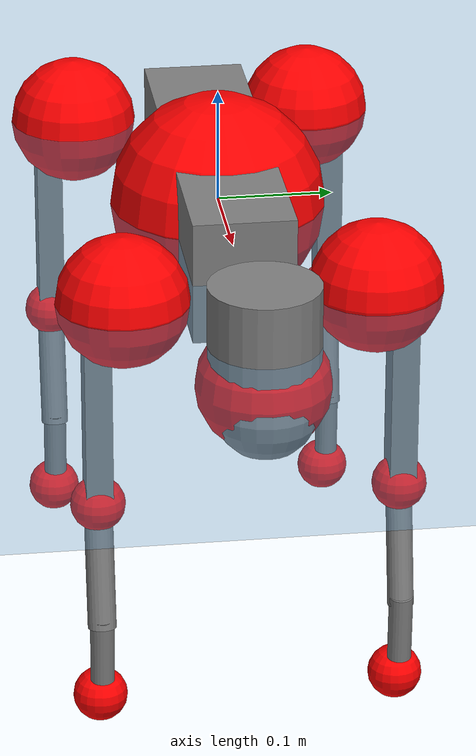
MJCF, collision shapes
<mujoco model="go2">
  <compiler angle="radian" assetdir="assets" balanceinertia="true" inertiafromgeom="false"/>

  <option timestep="0.005" density="1.2" viscosity="2e-05"/>

  <size nkey="1"/>

  <visual>
    <quality shadowsize="8192"/>
    <map shadowclip="0.5"/>
  </visual>

  <default>
    <default class="/">
      <geom contype="0" conaffinity="0" group="1" solref="-1000 -80"/>
      <site size="0.01 0.005 0.005" group="5"/>
      <general forcelimited="true" biastype="affine" gainprm="20" biasprm="0 -20 -0.5"/>
      <default class="go2">
        <joint armature="0.01" damping="0.01" frictionloss="0.2"/>
        <geom condim="1" margin="0.001"/>
        <default class="visual">
          <geom type="mesh" group="2"/>
        </default>
        <default class="collision">
          <geom group="3"/>
          <default class="foot">
            <geom size="0.022 0 0" condim="6" priority="1" friction="0.8 0.02 0.01" solimp="0.015 1 0.022"/>
          </default>
        </default>
        <default class="reward_collision_sphere">
          <geom group="5" rgba="1 0 0 1"/>
        </default>
      </default>
    </default>
  </default>

  <asset>
    <texture type="skybox" colorspace="auto" name="//unnamed_texture_0" builtin="gradient" rgb1="0.95 0.95 0.95" rgb2="0.95 0.95 0.95" width="100" height="600"/>
    <texture type="2d" colorspace="auto" name="texplane" builtin="checker" rgb1="0.345 0.575 0.748" rgb2="0.345 0.575 0.748" markrgb="1 1 1" width="512" height="512"/>
    <material name="MatPlane" class="/" texture="texplane" texuniform="true" texrepeat="2 2" specular="0.9"/>
    <material name="metal" class="/" rgba="0.9 0.95 0.95 1"/>
    <material name="black" class="/" rgba="0 0 0 1"/>
    <material name="white" class="/"/>
    <material name="gray" class="/" rgba="0.671705 0.692426 0.77427 1"/>
    <mesh name="base_0" class="/" file="base_0.obj"/>
    <mesh name="base_1" class="/" file="base_1.obj"/>
    <mesh name="base_2" class="/" file="base_2.obj"/>
    <mesh name="base_3" class="/" file="base_3.obj"/>
    <mesh name="base_4" class="/" file="base_4.obj"/>
    <mesh name="hip_0" class="/" file="hip_0.obj"/>
    <mesh name="hip_1" class="/" file="hip_1.obj"/>
    <mesh name="thigh_0" class="/" file="thigh_0.obj"/>
    <mesh name="thigh_1" class="/" file="thigh_1.obj"/>
    <mesh name="thigh_mirror_0" class="/" file="thigh_mirror_0.obj"/>
    <mesh name="thigh_mirror_1" class="/" file="thigh_mirror_1.obj"/>
    <mesh name="calf_0" class="/" file="calf_0.obj"/>
    <mesh name="calf_1" class="/" file="calf_1.obj"/>
    <mesh name="calf_mirror_0" class="/" file="calf_mirror_0.obj"/>
    <mesh name="calf_mirror_1" class="/" file="calf_mirror_1.obj"/>
    <mesh name="foot" class="/" file="foot.obj"/>
  </asset>

  <worldbody>
    <geom name="floor" class="/" size="100 100 0.125" type="plane" group="0" material="MatPlane"/>
    <light name="toplight_shadow" class="/" pos="0 0 5" dir="0.0990148 0.0990148 -0.990148" type="directional" ambient="0.04 0.04 0.04" diffuse="0.55 0.55 0.55" specular="0.12 0.12 0.12"/>
    <light name="toplight_fill" class="/" pos="0 0 5" dir="0.0990148 0.0990148 -0.990148" type="directional" castshadow="false" ambient="0.04 0.04 0.04" diffuse="0.3 0.3 0.3" specular="0.08 0.08 0.08"/>
    <body name="trunk" childclass="go2" pos="-0.000151978 -0.00010665 0.000305366" quat="1 0.0001317 -0.000209446 -3.0899e-06">
      <inertial pos="0.0215739 0.000123917 -0.0047341" quat="0.00271576 0.714497 -0.00264089 0.699628" mass="5.68264" diaginertia="0.124431 0.0611924 0.0126493"/>
      <joint name="//unnamed_joint_0" type="free" armature="0" damping="0" frictionloss="0"/>
      <geom name="//unnamed_geom_1" class="visual" material="black" mesh="base_0"/>
      <geom name="//unnamed_geom_2" class="visual" material="black" mesh="base_1"/>
      <geom name="//unnamed_geom_3" class="visual" material="black" mesh="base_2"/>
      <geom name="//unnamed_geom_4" class="visual" material="white" mesh="base_3"/>
      <geom name="//unnamed_geom_5" class="visual" material="gray" mesh="base_4"/>
      <geom name="trunk_1" class="collision" size="0.176871 0.0439593 0.0535974" type="box"/>
      <geom name="trunk_2" class="collision" size="0.0470153 0.0423137" pos="0.294238 0 0.00876009" type="cylinder"/>
      <geom name="trunk_3" class="collision" size="0.0441944" pos="0.302497 0 -0.0525605"/>
      <geom name="//unnamed_geom_9" class="reward_collision_sphere" size="0.0940305"/>
      <geom name="//unnamed_geom_10" class="reward_collision_sphere" size="0.0564183" pos="0.289076 0 -0.0394204"/>
      <site name="imu" pos="-0.024175 -0.000202669 0.0350415" size="0.00940305"/>
      <camera name="track" pos="0 -1.82499 0" quat="0.707107 0.707107 0 0" mode="trackcom"/>
      <camera name="ego_camera" pos="0.322113 0 0.0394204" quat="-0.5 -0.5 0.5 0.5"/>
      <body name="FL_hip" pos="0.199 0.0431616 0.00112255" quat="1 0.000103561 -2.91333e-05 1.53363e-05">
        <inertial pos="-0.00550291 0.00209484 -0.000385835" quat="0.496608 0.499458 0.505925 0.497957" mass="0.56036" diaginertia="0.00103104 0.000381002 0.000247868"/>
        <joint name="FL_hip_joint" pos="0 0 0" axis="0.999949 0.00772684 -0.00655338" range="-1.04188 1.0494" armature="0.00924003" damping="0.00615759" frictionloss="0.182584"/>
        <geom name="//unnamed_geom_11" class="visual" material="metal" mesh="hip_0"/>
        <geom name="//unnamed_geom_12" class="visual" material="gray" mesh="hip_1"/>
        <geom name="//unnamed_geom_13" class="collision" size="0.0432541 0.0188061" pos="0 0.0729995 0" quat="0.707107 0.707107 0 0" type="cylinder"/>
        <geom name="//unnamed_geom_14" class="reward_collision_sphere" size="0.0564183" pos="0 0.0638746 0"/>
        <body name="FL_thigh" pos="0.000428594 0.0873504 0.000981584" quat="1 -0.000271651 -5.07525e-05 0.000126832">
          <inertial pos="-0.00386921 -0.0201271 -0.029058" quat="0.828741 0.0852583 -0.0221665 0.552656" mass="0.95391" diaginertia="0.00697593 0.00368595 0.000451718"/>
          <joint name="FL_thigh_joint" pos="0 0 0" axis="-0.00168978 0.999997 0.00199814" stiffness="0.00286999" range="-1.57431 3.49057" armature="0.00914626" damping="0.0111311" frictionloss="0.195855"/>
          <geom name="//unnamed_geom_15" class="visual" material="metal" mesh="thigh_0"/>
          <geom name="//unnamed_geom_16" class="visual" material="gray" mesh="thigh_1"/>
          <geom name="//unnamed_geom_17" class="collision" size="0.100143 0.0115187 0.0159852" pos="0 0 -0.0932949" quat="0.707107 0 0.707107 0" type="box"/>
          <body name="FL_calf" pos="-0.000454315 -0.000833055 -0.186546" quat="1 3.03647e-05 0.000459259 8.41553e-05">
            <inertial pos="0.00598232 -0.000920132 -0.123064" quat="0.710772 0.00222447 -0.00498606 0.703401" mass="0.196285" diaginertia="0.00174482 0.00091405 2.72621e-05"/>
            <joint name="FL_calf_joint" pos="0 0 0" axis="-0.000821783 0.999996 0.0025748" stiffness="0.00126134" range="-2.72542 -0.839931" armature="0.00935525" damping="0.00755304" frictionloss="0.185732"/>
            <geom name="//unnamed_geom_18" class="visual" material="gray" mesh="calf_0"/>
            <geom name="//unnamed_geom_19" class="visual" material="black" mesh="calf_1"/>
            <geom name="FL_calf0" class="collision" size="0.0112837 0.0564183" pos="0.00825931 0 -0.0525605" quat="0.994493 0 -0.104807 0" type="cylinder"/>
            <geom name="//unnamed_geom_21" class="collision" size="0.0103434 0.0305599" pos="0.0206483 0 -0.129649" quat="0.999688 0 0.0249974 0" type="cylinder"/>
            <geom name="//unnamed_geom_22" class="visual" pos="0 0 -0.18659" quat="1 0 0 0" material="black" mesh="foot"/>
            <geom name="FL_foot" class="foot" size="0.0165566" pos="-0.00206483 0 -0.18659"/>
            <geom name="//unnamed_geom_24" class="reward_collision_sphere" size="0.0235076"/>
            <geom name="//unnamed_geom_25" class="reward_collision_sphere" size="0.0235076" pos="-0.00206483 0 -0.18659"/>
            <site name="FL_foot" class="foot" pos="-0.00206483 0 -0.18659" size="0.00940305"/>
          </body>
        </body>
      </body>
      <body name="FR_hip" pos="0.200012 -0.0410179 6.55459e-05" quat="1 2.64987e-05 -2.9263e-05 -5.79141e-05">
        <inertial pos="-0.00475937 -0.00123183 -0.00120239" quat="0.495271 0.508414 0.500239 0.495966" mass="0.566502" diaginertia="0.00104409 0.000382731 0.000248372"/>
        <joint name="FR_hip_joint" pos="0 0 0" axis="0.999993 0.00372844 -0.000341312" stiffness="0.00512732" range="-1.05234 1.0437" armature="0.0093844" damping="0.014006" frictionloss="0.192571"/>
        <geom name="//unnamed_geom_26" class="visual" pos="0 3.17848e-10 1.36332e-08" quat="4.63268e-05 1 0 0" material="metal" mesh="hip_0"/>
        <geom name="//unnamed_geom_27" class="visual" pos="0 5.15269e-10 -3.372e-08" quat="4.63268e-05 1 0 0" material="gray" mesh="hip_1"/>
        <geom name="//unnamed_geom_28" class="collision" size="0.0432541 0.0188061" pos="0 -0.0729995 0" quat="0.707107 0.707107 0 0" type="cylinder"/>
        <geom name="//unnamed_geom_29" class="reward_collision_sphere" size="0.0564183" pos="0 -0.0638746 0"/>
        <body name="FR_thigh" pos="0.00047198 -0.0864272 -0.000171616" quat="1 4.81932e-05 -7.78215e-07 -5.89483e-05">
          <inertial pos="-0.00321196 0.0214043 -0.0281567" quat="0.551854 -0.0200548 0.084326 0.829424" mass="0.960807" diaginertia="0.00695374 0.0037155 0.00045462"/>
          <joint name="FR_thigh_joint" pos="0 0 0" axis="-0.00486387 -0.999978 -0.00442256" range="-3.4904 1.5581" armature="0.00918762" damping="0.0139969" frictionloss="0.192076"/>
          <geom name="//unnamed_geom_30" class="visual" material="metal" mesh="thigh_mirror_0"/>
          <geom name="//unnamed_geom_31" class="visual" material="gray" mesh="thigh_mirror_1"/>
          <geom name="//unnamed_geom_32" class="collision" size="0.100143 0.0115187 0.0159852" pos="0 0 -0.0932949" quat="0.707107 0 0.707107 0" type="box"/>
          <body name="FR_calf" pos="-0.000372602 -0.000369301 -0.186694" quat="1 -0.00022769 -9.97777e-05 0.000101165">
            <inertial pos="0.00750043 0.00154906 -0.124719" quat="0.703169 -0.00611992 0.00172954 0.710994" mass="0.201388" diaginertia="0.00172973 0.000920005 2.7547e-05"/>
            <joint name="FR_calf_joint" pos="0 0 0" axis="-0.000919168 -1 0.000155373" range="0.829643 2.72639" armature="0.00942604" damping="0.00873735" frictionloss="0.185834"/>
            <geom name="//unnamed_geom_33" class="visual" material="gray" mesh="calf_mirror_0"/>
            <geom name="//unnamed_geom_34" class="visual" material="black" mesh="calf_mirror_1"/>
            <geom name="FR_calf0" class="collision" size="0.012224 0.0564183" pos="0.0103241 0 -0.0525605" quat="0.995004 0 -0.0998334 0" type="cylinder"/>
            <geom name="//unnamed_geom_36" class="collision" size="0.0103434 0.0305599" pos="0.0206483 0 -0.129649" quat="0.999688 0 0.0249974 0" type="cylinder"/>
            <geom name="//unnamed_geom_37" class="visual" pos="0 0 -0.18659" quat="1 0 0 0" material="black" mesh="foot"/>
            <geom name="FR_foot" class="foot" size="0.0220871" pos="-0.00206483 0 -0.18659"/>
            <geom name="//unnamed_geom_39" class="reward_collision_sphere" size="0.0235076"/>
            <geom name="//unnamed_geom_40" class="reward_collision_sphere" size="0.0235076" pos="-0.00206483 0 -0.18659"/>
            <site name="FR_foot" class="foot" pos="-0.00206483 0 -0.18659" size="0.00940305"/>
          </body>
        </body>
      </body>
      <body name="RL_hip" pos="-0.198712 0.0428854 0.000524206" quat="1 -0.000197421 0.000357171 -0.000261475">
        <inertial pos="0.00577339 0.00142118 -5.89842e-05" quat="0.50595 0.499149 0.496047 0.4988" mass="0.568745" diaginertia="0.00103279 0.000378235 0.000249202"/>
        <joint name="RL_hip_joint" pos="0 0 0" axis="-0.999764 -0.0131152 0.0173408" stiffness="0.000567496" range="-1.06494 1.04835" armature="0.00941838" damping="0.0148682" frictionloss="0.186695"/>
        <geom name="//unnamed_geom_41" class="visual" pos="-1.36253e-09 0 -2.67088e-07" quat="4.63268e-05 0 1 0" material="metal" mesh="hip_0"/>
        <geom name="//unnamed_geom_42" class="visual" pos="-2.20883e-09 0 -2.36869e-07" quat="4.63268e-05 0 1 0" material="gray" mesh="hip_1"/>
        <geom name="//unnamed_geom_43" class="collision" size="0.0432541 0.0188061" pos="0 0.0729995 0" quat="0.707107 0.707107 0 0" type="cylinder"/>
        <geom name="//unnamed_geom_44" class="reward_collision_sphere" size="0.0564183" pos="0 0.0638746 0"/>
        <body name="RL_thigh" pos="-0.00110238 0.0859154 0.00118249" quat="1 1.32726e-05 -8.03895e-06 -1.85368e-05">
          <inertial pos="-0.0032671 -0.0196809 -0.0289718" quat="0.828865 0.087805 -0.0216829 0.552089" mass="0.953297" diaginertia="0.00698255 0.00364486 0.00044451"/>
          <joint name="RL_thigh_joint" pos="0 0 0" axis="0.000514128 1 -0.000782764" range="-0.540026 4.52113" armature="0.00942619" damping="0.0091019" frictionloss="0.184126"/>
          <geom name="//unnamed_geom_45" class="visual" material="metal" mesh="thigh_0"/>
          <geom name="//unnamed_geom_46" class="visual" material="gray" mesh="thigh_1"/>
          <geom name="//unnamed_geom_47" class="collision" size="0.100143 0.0115187 0.0159852" pos="0 0 -0.0932949" quat="0.707107 0 0.707107 0" type="box"/>
          <body name="RL_calf" pos="0.00100526 -0.00149793 -0.187175" quat="1 0.000207116 -0.000151558 -2.93219e-05">
            <inertial pos="0.00617948 -0.000409374 -0.122744" quat="0.712661 -0.000808117 -0.00345023 0.701499" mass="0.200466" diaginertia="0.00174274 0.000930021 2.74335e-05"/>
            <joint name="RL_calf_joint" pos="0 0 0" axis="0.00375534 0.999985 0.00410508" stiffness="0.00414982" range="-2.7111 -0.819524" armature="0.00964335" damping="0" frictionloss="0.194639"/>
            <geom name="//unnamed_geom_48" class="visual" material="gray" mesh="calf_0"/>
            <geom name="//unnamed_geom_49" class="visual" material="black" mesh="calf_1"/>
            <geom name="RL_calf0" class="collision" size="0.012224 0.0564183" pos="0.0103241 0 -0.0525605" quat="0.995004 0 -0.0998334 0" type="cylinder"/>
            <geom name="//unnamed_geom_51" class="collision" size="0.0103434 0.0305599" pos="0.0206483 0 -0.129649" quat="0.999688 0 0.0249974 0" type="cylinder"/>
            <geom name="//unnamed_geom_52" class="visual" pos="0 0 -0.18659" quat="1 0 0 0" material="black" mesh="foot"/>
            <geom name="RL_foot" class="foot" size="0.018185" pos="-0.00206483 0 -0.18659"/>
            <geom name="//unnamed_geom_54" class="reward_collision_sphere" size="0.0235076"/>
            <geom name="//unnamed_geom_55" class="reward_collision_sphere" size="0.0235076" pos="-0.00206483 0 -0.18659"/>
            <site name="RL_foot" class="foot" pos="-0.00206483 0 -0.18659" size="0.00940305"/>
          </body>
        </body>
      </body>
      <body name="RR_hip" pos="-0.200332 -0.0431443 -0.00178621" quat="1 5.64412e-06 4.71063e-07 -2.43449e-05">
        <inertial pos="0.00457161 -0.0024214 0.000267706" quat="0.500592 0.496934 0.497976 0.504465" mass="0.561428" diaginertia="0.00102159 0.000371188 0.00024377"/>
        <joint name="RR_hip_joint" pos="0 0 0" axis="-0.999994 -0.00206385 -0.00278176" range="-1.04592 1.05367" armature="0.00931188" damping="0.00488653" frictionloss="0.189958"/>
        <geom name="//unnamed_geom_56" class="visual" pos="1.35838e-09 3.17848e-10 -2.80721e-07" quat="2.14617e-09 4.63268e-05 4.63268e-05 -1" material="metal" mesh="hip_0"/>
        <geom name="//unnamed_geom_57" class="visual" pos="2.2191e-09 5.15269e-10 -2.03149e-07" quat="2.14617e-09 4.63268e-05 4.63268e-05 -1" material="gray" mesh="hip_1"/>
        <geom name="//unnamed_geom_58" class="collision" size="0.0432541 0.0188061" pos="0 -0.0729995 0" quat="0.707107 0.707107 0 0" type="cylinder"/>
        <geom name="//unnamed_geom_59" class="reward_collision_sphere" size="0.0564183" pos="0 -0.0638746 0"/>
        <body name="RR_thigh" pos="0.000332086 -0.0879002 -0.00127168" quat="1 -4.72952e-07 1.45171e-06 2.38233e-06">
          <inertial pos="-0.00320469 0.0207029 -0.0283737" quat="0.552565 -0.0176235 0.081923 0.829247" mass="0.953581" diaginertia="0.00699822 0.00367914 0.000458835"/>
          <joint name="RR_thigh_joint" pos="0 0 0" axis="-0.00302042 -0.999995 0.000452293" stiffness="0.00223232" range="-4.54105 0.526264" armature="0.0092119" damping="0.0163699" frictionloss="0.193945"/>
          <geom name="//unnamed_geom_60" class="visual" material="metal" mesh="thigh_mirror_0"/>
          <geom name="//unnamed_geom_61" class="visual" material="gray" mesh="thigh_mirror_1"/>
          <geom name="//unnamed_geom_62" class="collision" size="0.100143 0.0115187 0.0159852" pos="0 0 -0.0932949" quat="0.707107 0 0.707107 0" type="box"/>
          <body name="RR_calf" pos="0.00103002 -0.000501819 -0.187263" quat="1 7.96885e-05 -5.57754e-05 -3.99607e-06">
            <inertial pos="0.00651191 5.74038e-05 -0.123771" quat="0.70337 -0.00569854 0.00203213 0.710798" mass="0.200198" diaginertia="0.00177284 0.000924928 2.75202e-05"/>
            <joint name="RR_calf_joint" pos="0 0 0" axis="0.00125262 -0.999996 0.00244778" range="0.83426 2.73172" armature="0.00938311" damping="0.00930078" frictionloss="0.191042"/>
            <geom name="//unnamed_geom_63" class="visual" material="gray" mesh="calf_mirror_0"/>
            <geom name="//unnamed_geom_64" class="visual" material="black" mesh="calf_mirror_1"/>
            <geom name="RR_calf0" class="collision" size="0.012224 0.0564183" pos="0.0103241 0 -0.0525605" quat="0.995004 0 -0.0998334 0" type="cylinder"/>
            <geom name="//unnamed_geom_66" class="collision" size="0.0103434 0.0305599" pos="0.0206483 0 -0.129649" quat="0.999688 0 0.0249974 0" type="cylinder"/>
            <geom name="//unnamed_geom_67" class="visual" pos="0 0 -0.18659" quat="1 0 0 0" material="black" mesh="foot"/>
            <geom name="RR_foot" class="foot" size="0.0218131" pos="-0.00206483 0 -0.18659"/>
            <geom name="//unnamed_geom_69" class="reward_collision_sphere" size="0.0235076"/>
            <geom name="//unnamed_geom_70" class="reward_collision_sphere" size="0.0235076" pos="-0.00206483 0 -0.18659"/>
            <site name="RR_foot" class="foot" pos="-0.00206483 0 -0.18659" size="0.00940305"/>
          </body>
        </body>
      </body>
    </body>
  </worldbody>

  <contact>
    <pair class="/" geom1="floor" geom2="FL_foot" name="//unnamed_contact_0"/>
    <pair class="/" geom1="floor" geom2="FR_foot" name="//unnamed_contact_1"/>
    <pair class="/" geom1="floor" geom2="RL_foot" name="//unnamed_contact_2"/>
    <pair class="/" geom1="floor" geom2="RR_foot" name="//unnamed_contact_3"/>
  </contact>

  <actuator>
    <general name="FL_hip" class="/" joint="FL_hip_joint" forcerange="-22.3073 22.3073" gainprm="18.8801" biasprm="0 -18.8801 -0.476755"/>
    <general name="FL_thigh" class="/" joint="FL_thigh_joint" forcerange="-22.6743 22.6743" gainprm="18.8801" biasprm="0 -18.8801 -0.476755"/>
    <general name="FL_calf" class="/" joint="FL_calf_joint" forcerange="-41.5078 41.5078" gainprm="18.8801" biasprm="0 -18.8801 -0.476755"/>
    <general name="FR_hip" class="/" joint="FR_hip_joint" forcerange="-22.2532 22.2532" gainprm="18.8801" biasprm="0 -18.8801 -0.476755"/>
    <general name="FR_thigh" class="/" joint="FR_thigh_joint" forcerange="-22.0827 22.0827" gainprm="18.8801" biasprm="0 -18.8801 -0.476755"/>
    <general name="FR_calf" class="/" joint="FR_calf_joint" forcerange="-41.1997 41.1997" gainprm="18.8801" biasprm="0 -18.8801 -0.476755"/>
    <general name="RL_hip" class="/" joint="RL_hip_joint" forcerange="-22.3533 22.3533" gainprm="18.8801" biasprm="0 -18.8801 -0.476755"/>
    <general name="RL_thigh" class="/" joint="RL_thigh_joint" forcerange="-21.5784 21.5784" gainprm="18.8801" biasprm="0 -18.8801 -0.476755"/>
    <general name="RL_calf" class="/" joint="RL_calf_joint" forcerange="-43.5182 43.5182" gainprm="18.8801" biasprm="0 -18.8801 -0.476755"/>
    <general name="RR_hip" class="/" joint="RR_hip_joint" forcerange="-22.5227 22.5227" gainprm="18.8801" biasprm="0 -18.8801 -0.476755"/>
    <general name="RR_thigh" class="/" joint="RR_thigh_joint" forcerange="-22.5909 22.5909" gainprm="18.8801" biasprm="0 -18.8801 -0.476755"/>
    <general name="RR_calf" class="/" joint="RR_calf_joint" forcerange="-41.5745 41.5745" gainprm="18.8801" biasprm="0 -18.8801 -0.476755"/>
  </actuator>

  <sensor>
    <gyro site="imu" name="imu_angular_velocity"/>
    <velocimeter site="imu" name="imu_linear_velocity"/>
    <framelinvel objtype="site" objname="FL_foot" name="FL_foot_global_linear_velocity"/>
    <framelinvel objtype="site" objname="FR_foot" name="FR_foot_global_linear_velocity"/>
    <framelinvel objtype="site" objname="RL_foot" name="RL_foot_global_linear_velocity"/>
    <framelinvel objtype="site" objname="RR_foot" name="RR_foot_global_linear_velocity"/>
  </sensor>

  <keyframe>
    <key name="home" qpos="0 0 0.325 1 0 0 0 0.1 0.8 -1.5 -0.1 -0.8 1.5 -0.1 0.8 -1.5 0.1 -0.8 1.5"/>
  </keyframe>
</mujoco>
